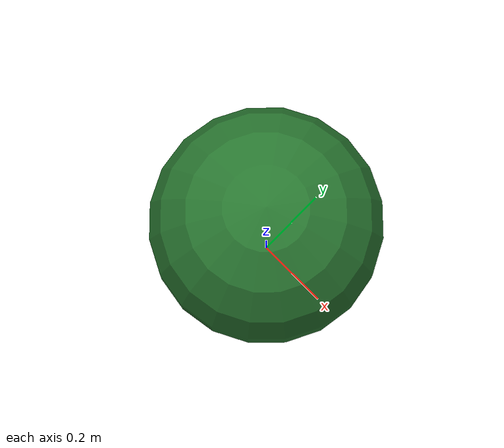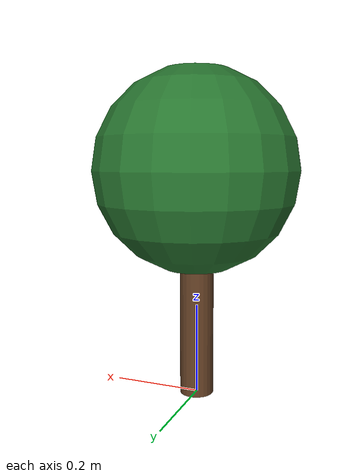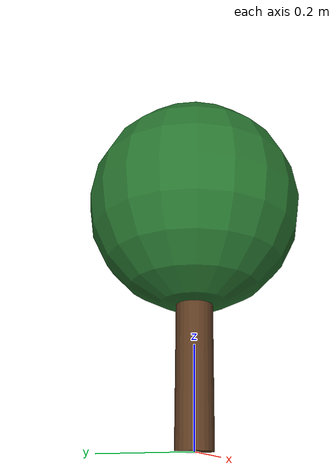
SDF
<sdf version="1.9">
  <model name="tree">
    <static>true</static>
    <link name="tree_link">
      <collision name="trunk_collision">
        <pose>0 0 0.2 0 0 0</pose>
        <geometry>
          <cylinder>
            <radius>0.0375</radius>
            <length>0.4</length>
          </cylinder>
        </geometry>
      </collision>
      <visual name="trunk_visual">
        <pose>0 0 0.2 0 0 0</pose>
        <geometry>
          <cylinder>
            <radius>0.0375</radius>
            <length>0.4</length>
          </cylinder>
        </geometry>
        <material>
          <ambient>0.35 0.22 0.12 1</ambient>
          <diffuse>0.35 0.22 0.12 1</diffuse>
          <specular>0.02 0.02 0.02 1</specular>
        </material>
      </visual>

      <visual name="canopy_visual">
        <pose>0 0 0.5 0 0 0</pose>
        <geometry>
          <sphere>
            <radius>0.225</radius>
          </sphere>
        </geometry>
        <material>
          <ambient>0.15 0.45 0.18 1</ambient>
          <diffuse>0.15 0.45 0.18 1</diffuse>
          <specular>0.03 0.03 0.03 1</specular>
        </material>
      </visual>
    </link>
  </model>
</sdf>
